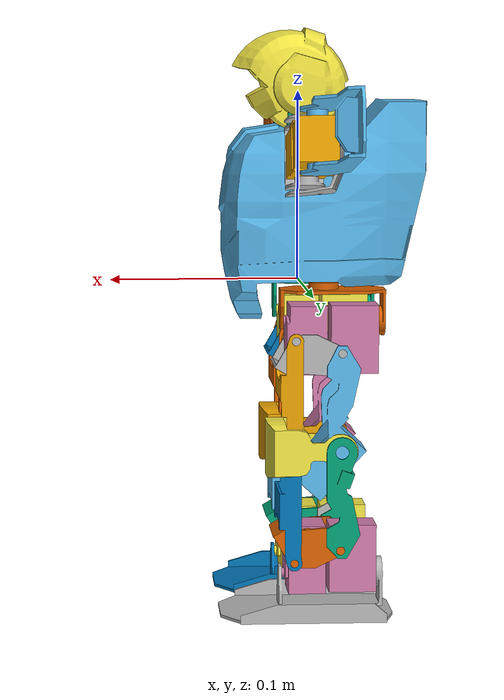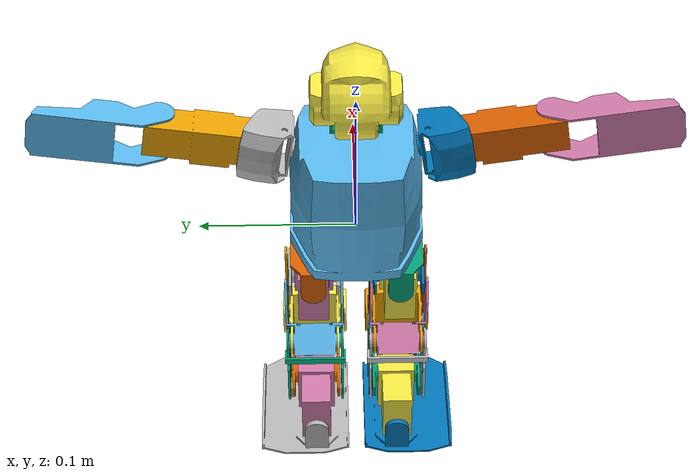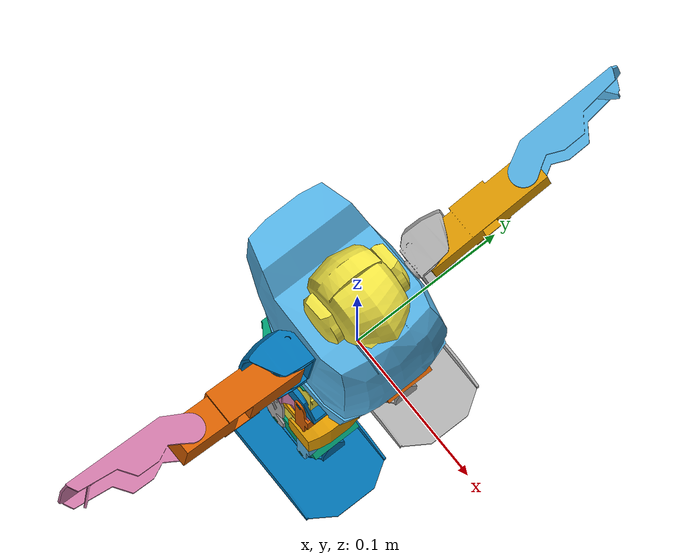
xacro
<?xml version="1.0"?>
<robot name="roboviez" xmlns:xacro="http://www.ros.org/wiki/xacro">

  <xacro:include filename="$(find roboviez_ros_samples)/urdf/common.xacro"/>

  <link name="world"/>

   <!-- Body -->

  <joint name="base_joint" type="floating">
    <parent link="world"/>
    <child  link="base_link"/>
  </joint>
  <link name="base_link">
    <visual>
      <origin rpy="0 0 0" xyz="0 0 0"/>
      <geometry>
          <mesh filename="package://roboviez_ros_samples/meshes/dae/roboviez_body.dae" />
      </geometry>
      <origin xyz="0 0 0" rpy="0 0 0"/>
    </visual>
  </link>

   <!-- Head -->

  <joint name="id14_joint" type="revolute">
    <xacro:axis_joint
      parent_link="base_link" link_name="id14_link" lower="-1.5707" upper="1.5707" velocity="1"
      origin_x="0" origin_y="0" origin_z="0.0825" axis_x="0" axis_y="0" axis_z="-1"  rpy_x="0" rpy_y="0" rpy_z="0">
    </xacro:axis_joint>
  </joint>
  <link name="id14_link">
    <visual>
      <origin rpy="0 0 0" xyz="0 0 0"/>
      <geometry>
          <mesh filename="package://roboviez_ros_samples/meshes/dae/neck_yaw.dae" />
      </geometry>
    </visual>
  </link>

  <joint name="id15_joint" type="revolute">
    <xacro:axis_joint
      parent_link="id14_link" link_name="id15_link" lower="-0.7853" upper="0.3926" velocity="1"
      origin_x="0" origin_y="0" origin_z="0.018" axis_x="0" axis_y="1" axis_z="0"  rpy_x="0" rpy_y="0" rpy_z="0">
    </xacro:axis_joint>
  </joint>
  <link name="id15_link">
    <visual>
      <origin rpy="0 0 0" xyz="0 0 0"/>
      <geometry>
          <mesh filename="package://roboviez_ros_samples/meshes/dae/head.dae" />
      </geometry>
    </visual>
  </link>

   <!-- R Arm -->

  <joint name="id16_joint" type="revolute">
    <xacro:axis_joint
      parent_link="base_link" link_name="id16_link" lower="-1.5707" upper="1.5707" velocity="1"
      origin_x="0" origin_y="-0.039962" origin_z="0.065934" axis_x="0" axis_y="1" axis_z="0" rpy_x="${M_PI/-20}" rpy_y="0" rpy_z="0">
    </xacro:axis_joint>
  </joint>
  <link name="id16_link">
    <visual>
      <origin rpy="0 ${M_PI/-2} 0" xyz="0 0 0"/>
      <geometry>
          <mesh filename="package://roboviez_ros_samples/meshes/dae/shoulder.dae" />
      </geometry>
    </visual>
  </link>

  <joint name="id17_joint" type="revolute">
    <xacro:axis_joint
      parent_link="id16_link" link_name="id17_link" lower="-1.5707" upper="1.5707" velocity="1"
      origin_x="0" origin_y="-0.016" origin_z="0" axis_x="0" axis_y="0" axis_z="1" rpy_x="0" rpy_y="0" rpy_z="0">
    </xacro:axis_joint>
  </joint>
  <link name="id17_link">
    <visual>
      <origin rpy="${M_PI/-2} ${M_PI/-2} 0 " xyz="0 0 0"/>
      <geometry>
          <mesh filename="package://roboviez_ros_samples/meshes/dae/arm.dae" />
      </geometry>
    </visual>
  </link>

  <joint name="id18_joint" type="revolute">
    <xacro:axis_joint
      parent_link="id17_link" link_name="id18_link" lower="-1.5707" upper="1.5707" velocity="1"
      origin_x="0" origin_y="-0.065" origin_z="0" axis_x="0" axis_y="0" axis_z="-1" rpy_x="0" rpy_y="0" rpy_z="0">
    </xacro:axis_joint>
  </joint>
  <link name="id18_link">
    <visual>
      <origin rpy="${M_PI/-2} ${M_PI/-2} 0 " xyz="0 0 0"/>
      <geometry>
          <mesh filename="package://roboviez_ros_samples/meshes/dae/hand.dae" />
      </geometry>
    </visual>
  </link>

   <!-- L Arm -->

  <joint name="id19_joint" type="revolute">
    <xacro:axis_joint
      parent_link="base_link" link_name="id19_link" lower="-1.5707" upper="1.5707" velocity="1"
      origin_x="0" origin_y="0.039962" origin_z="0.065934" axis_x="0" axis_y="-1" axis_z="0" rpy_x="${M_PI/20}" rpy_y="0" rpy_z="0">
    </xacro:axis_joint>
  </joint>
  <link name="id19_link">
    <visual>
      <origin rpy="0 ${M_PI/2} ${M_PI}" xyz="0 0 0"/>
      <geometry>
          <mesh filename="package://roboviez_ros_samples/meshes/dae/shoulder.dae" />
      </geometry>
    </visual>
  </link>

  <joint name="id20_joint" type="revolute">
    <xacro:axis_joint
      parent_link="id19_link" link_name="id20_link" lower="-1.5707" upper="1.5707" velocity="1"
      origin_x="0" origin_y="0.016" origin_z="0" axis_x="0" axis_y="0" axis_z="1" rpy_x="0" rpy_y="0" rpy_z="0">
    </xacro:axis_joint>
  </joint>
  <link name="id20_link">
    <visual>
      <origin rpy="${M_PI/2} ${M_PI/2} 0 " xyz="0 0 0"/>
      <geometry>
          <mesh filename="package://roboviez_ros_samples/meshes/dae/arm.dae" />
      </geometry>
    </visual>
  </link>

  <joint name="id21_joint" type="revolute">
    <xacro:axis_joint
      parent_link="id20_link" link_name="id21_link" lower="-1.5707" upper="1.5707" velocity="1"
      origin_x="0" origin_y="0.065" origin_z="0" axis_x="0" axis_y="0" axis_z="-1" rpy_x="0" rpy_y="0" rpy_z="0">
    </xacro:axis_joint>
  </joint>
  <link name="id21_link">
    <visual>
      <origin rpy="${M_PI/2} ${M_PI/2} 0 " xyz="0 0 0"/>
      <geometry>
          <mesh filename="package://roboviez_ros_samples/meshes/dae/hand.dae" />
      </geometry>
    </visual>
  </link>

  <!-- R Leg -->

  <joint name="id12_joint" type="revolute">
    <xacro:axis_joint
      parent_link="base_link" link_name="id12_link" lower="-1.5707" upper="1.5707" velocity="1"
      origin_x="-0.0115" origin_y="-0.0275" origin_z="-0.0025" axis_x="0" axis_y="0" axis_z="1" rpy_x="0" rpy_y="0" rpy_z="0">
    </xacro:axis_joint>
  </joint>
  <link name="id12_link">
    <visual>
      <origin rpy="0 0 0" xyz="0 0 0"/>
      <geometry>
          <mesh filename="package://roboviez_ros_samples/meshes/dae/leg_yaw.dae" />
      </geometry>
    </visual>
  </link>

  <joint name="id2_joint" type="revolute">
    <xacro:axis_joint
      parent_link="id12_link" link_name="id2_link" lower="-1.5707" upper="1.5707" velocity="1"
      origin_x="-0.026819" origin_y="0" origin_z="-0.017" axis_x="-1" axis_y="0" axis_z="0" rpy_x="0" rpy_y="0" rpy_z="0">
    </xacro:axis_joint>
  </joint>
  <link name="id2_link">
    <visual>
      <origin rpy="0 0 0" xyz="0 0 0"/>
      <geometry>
          <mesh filename="package://roboviez_ros_samples/meshes/dae/leg_roll.dae" />
      </geometry>
    </visual>
  </link>

  <joint name="id3_joint" type="revolute">
    <xacro:axis_joint
      parent_link="id2_link" link_name="id3_link" lower="-1.5707" upper="1.5707" velocity="1"
      origin_x="0.0355" origin_y="0" origin_z="-0.0182" axis_x="0" axis_y="-1" axis_z="0" rpy_x="0" rpy_y="0" rpy_z="0">
    </xacro:axis_joint>
  </joint>
  <link name="id3_link">
    <visual>
      <origin rpy="0 0 0" xyz="0 0 0"/>
      <geometry>
          <mesh filename="package://roboviez_ros_samples/meshes/dae/leg_pitch.dae" />
      </geometry>
    </visual>
  </link>

  <joint name="id4upper_joint" type="revolute">
    <xacro:axis_joint
      parent_link="id3_link" link_name="id4upper_link" lower="-1.5707" upper="1.5707" velocity="1"
      origin_x="0.007" origin_y="0" origin_z="0.0095" axis_x="0" axis_y="-1" axis_z="0" rpy_x="0" rpy_y="0" rpy_z="0">
    </xacro:axis_joint>
    <mimic joint="id4_joint" multiplier="-0.5" offset="${M_PI*0.25}" />

  </joint>
  <link name="id4upper_link">
    <visual>
      <origin rpy="0 0 0" xyz="0 0 0"/>
      <geometry>
          <mesh filename="package://roboviez_ros_samples/meshes/dae/link_fwd.dae" />
      </geometry>
    </visual>
  </link>

  <joint name="id4mot_joint" type="revolute">
    <xacro:axis_joint
      parent_link="id3_link" link_name="id4mot_link" lower="-1.5707" upper="1.5707" velocity="1"
      origin_x="-0.0171402" origin_y="0" origin_z="0.003" axis_x="0" axis_y="-1" axis_z="0" rpy_x="0" rpy_y="0" rpy_z="0">
    </xacro:axis_joint>
    <mimic joint="id4_joint" multiplier="-0.5" offset="${M_PI*0.25}" />

  </joint>
  <link name="id4mot_link">
    <visual>
      <origin rpy="0 0 0" xyz="0 0 0"/>
      <geometry>
          <mesh filename="package://roboviez_ros_samples/meshes/dae/leg_kneemot.dae" />
      </geometry>
    </visual>
  </link>

  <joint name="id4lowback_joint" type="revolute">
    <xacro:axis_joint
      parent_link="id4mot_link" link_name="id4lowback_link" lower="-1.5707" upper="1.5707" velocity="1"
      origin_x="0" origin_y="0" origin_z="-0.0520066" axis_x="0" axis_y="-1" axis_z="0" rpy_x="0" rpy_y="0" rpy_z="0">
    </xacro:axis_joint>
    <mimic joint="id4_joint" multiplier="1" offset="-${M_PI*0.5}" />

  </joint>
  <link name="id4lowback_link">
    <visual>
      <origin rpy="0 0 0" xyz="0 0 0"/>
      <geometry>
          <mesh filename="package://roboviez_ros_samples/meshes/dae/link_lowback.dae" />
      </geometry>
    </visual>
  </link>

  <joint name="id4knee_joint" type="revolute">
    <xacro:axis_joint
      parent_link="id4upper_link" link_name="id4knee_link" lower="-1.5707" upper="1.5707" velocity="1"
      origin_x="0.0007" origin_y="0" origin_z="-0.052" axis_x="0" axis_y="-1" axis_z="0" rpy_x="0" rpy_y="0" rpy_z="0">
    </xacro:axis_joint>
    <mimic joint="id4_joint" multiplier="0.5" offset="${M_PI*-0.25}" />

  </joint>
  <link name="id4knee_link">
    <visual>
      <origin rpy="0 0 0" xyz="0 0 0"/>
      <geometry>
          <mesh filename="package://roboviez_ros_samples/meshes/dae/leg_knee.dae" />
      </geometry>
    </visual>
  </link>

  <joint name="id4lower_joint" type="revolute">
    <xacro:axis_joint
      parent_link="id4knee_link" link_name="id4lower_link" lower="-1.5707" upper="1.5707" velocity="1"
      origin_x="0" origin_y="0" origin_z="-0.013" axis_x="0" axis_y="-1" axis_z="0" rpy_x="0" rpy_y="0" rpy_z="0">
    </xacro:axis_joint>
    <mimic joint="id4_joint" multiplier="0.5" offset="-${M_PI*0.25}" />

  </joint>
  <link name="id4lower_link">
    <visual>
      <origin rpy="0 0 0" xyz="0 0 0"/>
      <geometry>
          <mesh filename="package://roboviez_ros_samples/meshes/dae/link_lower.dae" />
      </geometry>
    </visual>
  </link>

  <joint name="id4bottom_joint" type="revolute">
    <xacro:axis_joint
      parent_link="id4lower_link" link_name="id4bottom_link" lower="-1.5707" upper="1.5707" velocity="1"
      origin_x="0" origin_y="0" origin_z="-0.052" axis_x="0" axis_y="-1" axis_z="0" rpy_x="0" rpy_y="0" rpy_z="0">
    </xacro:axis_joint>
    <mimic joint="id4_joint" multiplier="-0.5" offset="${M_PI*0.25}" />

  </joint>
  <link name="id4bottom_link">
    <visual>
      <origin rpy="0 0 0" xyz="0 0 0"/>
      <geometry>
          <mesh filename="package://roboviez_ros_samples/meshes/dae/leg_pitch_low.dae" />
      </geometry>
    </visual>
  </link>

  <joint name="id5_joint" type="revolute">
    <xacro:axis_joint
      parent_link="id4bottom_link" link_name="id5_link" lower="-1.5707" upper="1.5707" velocity="1"
      origin_x="-0.00699" origin_y="0" origin_z="0.009499" axis_x="0" axis_y="1" axis_z="0" rpy_x="0" rpy_y="0" rpy_z="0">
    </xacro:axis_joint>
  </joint>
  <link name="id5_link">
    <visual>
      <origin rpy="0 0 0" xyz="0 0 0"/>
      <geometry>
          <mesh filename="package://roboviez_ros_samples/meshes/dae/leg_pitch_l.dae" />
      </geometry>
    </visual>
  </link>

  <joint name="id6_joint" type="revolute">
    <xacro:axis_joint
      parent_link="id5_link" link_name="id6_link" lower="-1.5707" upper="1.5707" velocity="1"
      origin_x="-0.0355" origin_y="0" origin_z="-0.0182" axis_x="1" axis_y="0" axis_z="0" rpy_x="0" rpy_y="0" rpy_z="0">
    </xacro:axis_joint>
  </joint>
  <link name="id6_link">
    <visual>
      <origin rpy="0 0 0" xyz="0 0 0"/>
      <geometry>
          <mesh filename="package://roboviez_ros_samples/meshes/dae/footprint_R.dae" />
      </geometry>
    </visual>
  </link>

  <!-- L Leg -->

  <joint name="id13_joint" type="revolute">
    <xacro:axis_joint
      parent_link="base_link" link_name="id13_link" lower="-1.5707" upper="1.5707" velocity="1"
      origin_x="-0.0115" origin_y="0.0275" origin_z="-0.0025" axis_x="0" axis_y="0" axis_z="1" rpy_x="0" rpy_y="0" rpy_z="0">
    </xacro:axis_joint>
  </joint>
  <link name="id13_link">
    <visual>
      <origin rpy="0 0 0" xyz="0 0 0"/>
      <geometry>
          <mesh filename="package://roboviez_ros_samples/meshes/dae/leg_yaw.dae" />
      </geometry>
    </visual>
  </link>

  <joint name="id7_joint" type="revolute">
    <xacro:axis_joint
      parent_link="id13_link" link_name="id7_link" lower="-1.5707" upper="1.5707" velocity="1"
      origin_x="-0.026819" origin_y="0" origin_z="-0.017" axis_x="-1" axis_y="0" axis_z="0" rpy_x="0" rpy_y="0" rpy_z="0">
    </xacro:axis_joint>
  </joint>
  <link name="id7_link">
    <visual>
      <origin rpy="0 0 0" xyz="0 0 0"/>
      <geometry>
          <mesh filename="package://roboviez_ros_samples/meshes/dae/leg_roll.dae" />
      </geometry>
    </visual>
  </link>

  <joint name="id8_joint" type="revolute">
    <xacro:axis_joint
      parent_link="id7_link" link_name="id8_link" lower="-1.5707" upper="1.5707" velocity="1"
      origin_x="0.0355" origin_y="0" origin_z="-0.0182" axis_x="0" axis_y="1" axis_z="0" rpy_x="0" rpy_y="0" rpy_z="0">
    </xacro:axis_joint>
  </joint>
  <link name="id8_link">
    <visual>
      <origin rpy="0 0 0" xyz="0 0 0"/>
      <geometry>
          <mesh filename="package://roboviez_ros_samples/meshes/dae/leg_pitch.dae" />
      </geometry>
    </visual>
  </link>

  <joint name="id9upper_joint" type="revolute">
    <xacro:axis_joint
      parent_link="id8_link" link_name="id9upper_link" lower="-1.5707" upper="1.5707" velocity="1"
      origin_x="0.007" origin_y="0" origin_z="0.0095" axis_x="0" axis_y="1" axis_z="0" rpy_x="0" rpy_y="0" rpy_z="0">
    </xacro:axis_joint>
    <mimic joint="id9_joint" multiplier="-0.5" offset="${M_PI*-0.25}" />

  </joint>
  <link name="id9upper_link">
    <visual>
      <origin rpy="0 0 0" xyz="0 0 0"/>
      <geometry>
          <mesh filename="package://roboviez_ros_samples/meshes/dae/link_fwd.dae" />
      </geometry>
    </visual>
  </link>

  <joint name="id9mot_joint" type="revolute">
    <xacro:axis_joint
      parent_link="id8_link" link_name="id9mot_link" lower="-1.5707" upper="1.5707" velocity="1"
      origin_x="-0.0171402" origin_y="0" origin_z="0.003" axis_x="0" axis_y="1" axis_z="0" rpy_x="0" rpy_y="0" rpy_z="0">
    </xacro:axis_joint>
    <mimic joint="id9_joint" multiplier="-0.5" offset="${M_PI*-0.25}" />

  </joint>
  <link name="id9mot_link">
    <visual>
      <origin rpy="0 0 0" xyz="0 0 0"/>
      <geometry>
          <mesh filename="package://roboviez_ros_samples/meshes/dae/leg_kneemot.dae" />
      </geometry>
    </visual>
  </link>

  <joint name="id9lowback_joint" type="revolute">
    <xacro:axis_joint
      parent_link="id9mot_link" link_name="id9lowback_link" lower="-1.5707" upper="1.5707" velocity="1"
      origin_x="0" origin_y="0" origin_z="-0.0520066" axis_x="0" axis_y="1" axis_z="0" rpy_x="0" rpy_y="0" rpy_z="0">
    </xacro:axis_joint>
    <mimic joint="id9_joint" multiplier="1" offset="${M_PI*0.5}" />

  </joint>
  <link name="id9lowback_link">
    <visual>
      <origin rpy="0 0 0" xyz="0 0 0"/>
      <geometry>
          <mesh filename="package://roboviez_ros_samples/meshes/dae/link_lowback.dae" />
      </geometry>
    </visual>
  </link>

  <joint name="id9knee_joint" type="revolute">
    <xacro:axis_joint
      parent_link="id9upper_link" link_name="id9knee_link" lower="-1.5707" upper="1.5707" velocity="1"
      origin_x="0.0007" origin_y="0" origin_z="-0.052" axis_x="0" axis_y="1" axis_z="0" rpy_x="0" rpy_y="0" rpy_z="0">
    </xacro:axis_joint>
    <mimic joint="id9_joint" multiplier="0.5" offset="${M_PI*0.25}" />

  </joint>
  <link name="id9knee_link">
    <visual>
      <origin rpy="0 0 0" xyz="0 0 0"/>
      <geometry>
          <mesh filename="package://roboviez_ros_samples/meshes/dae/leg_knee.dae" />
      </geometry>
    </visual>
  </link>

  <joint name="id9lower_joint" type="revolute">
    <xacro:axis_joint
      parent_link="id9knee_link" link_name="id9lower_link" lower="-1.5707" upper="1.5707" velocity="1"
      origin_x="0" origin_y="0" origin_z="-0.013" axis_x="0" axis_y="1" axis_z="0" rpy_x="0" rpy_y="0" rpy_z="0">
    </xacro:axis_joint>
    <mimic joint="id9_joint" multiplier="0.5" offset="${M_PI*0.25}" />

  </joint>
  <link name="id9lower_link">
    <visual>
      <origin rpy="0 0 0" xyz="0 0 0"/>
      <geometry>
          <mesh filename="package://roboviez_ros_samples/meshes/dae/link_lower.dae" />
      </geometry>
    </visual>
  </link>

  <joint name="id9bottom_joint" type="revolute">
    <xacro:axis_joint
      parent_link="id9lower_link" link_name="id9bottom_link" lower="-1.5707" upper="1.5707" velocity="1"
      origin_x="0" origin_y="0" origin_z="-0.052" axis_x="0" axis_y="1" axis_z="0" rpy_x="0" rpy_y="0" rpy_z="0">
    </xacro:axis_joint>
    <mimic joint="id9_joint" multiplier="-0.5" offset="${M_PI*-0.25}" />

  </joint>
  <link name="id9bottom_link">
    <visual>
      <origin rpy="0 0 0" xyz="0 0 0"/>
      <geometry>
          <mesh filename="package://roboviez_ros_samples/meshes/dae/leg_pitch_low.dae" />
      </geometry>
    </visual>
  </link>

  <joint name="id10_joint" type="revolute">
    <xacro:axis_joint
      parent_link="id9bottom_link" link_name="id10_link" lower="-1.5707" upper="1.5707" velocity="1"
      origin_x="-0.00699" origin_y="0" origin_z="0.009499" axis_x="0" axis_y="-1" axis_z="0" rpy_x="0" rpy_y="0" rpy_z="0">
    </xacro:axis_joint>
  </joint>
  <link name="id10_link">
    <visual>
      <origin rpy="0 0 0" xyz="0 0 0"/>
      <geometry>
          <mesh filename="package://roboviez_ros_samples/meshes/dae/leg_pitch_l.dae" />
      </geometry>
    </visual>
  </link>

  <joint name="id11_joint" type="revolute">
    <xacro:axis_joint
      parent_link="id10_link" link_name="id11_link" lower="-1.5707" upper="1.5707" velocity="1"
      origin_x="-0.0355" origin_y="0" origin_z="-0.0182" axis_x="1" axis_y="0" axis_z="0" rpy_x="0" rpy_y="0" rpy_z="0">
    </xacro:axis_joint>
  </joint>
  <link name="id11_link">
    <visual>
      <origin rpy="0 0 0" xyz="0 0 0"/>
      <geometry>
          <mesh filename="package://roboviez_ros_samples/meshes/dae/footprint_L.dae" />
      </geometry>
    </visual>
  </link>

</robot>

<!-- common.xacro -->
<robot xmlns:xacro="http://ros.org/wiki/xacro">
  <property name="M_PI" value="3.14159274"/>

  <xacro:macro name="cylinder_inertial" params="mass radius length">
	<mass value="${mass}"/>
	<inertia ixx="${((radius*radius)/4 + (length*length)/12)*mass}" ixy="0" ixz="0"
			 iyy="${((radius*radius)/4 + (length*length)/12)*mass}" iyz="0"
			 izz="${(mass*radius*radius)/2}" />
  </xacro:macro>

  <xacro:macro name="box_inertial" params="mass height width depth">
	<mass value="${mass}"/>
	<inertia ixx="${(mass*(width*width+depth*depth))/12}" ixy="0" ixz="0"
			 iyy="${(mass*(height*height+depth*depth))/12}" iyz="0"
			 izz="${(mass*(height*height+width*width))/12}" />
  </xacro:macro>

  <xacro:macro name="boxlink" params="link_name mass x y z height width depth">
    <link name="${link_name}">
      <visual>
        <geometry>
          <box size="${depth} ${width} ${height}" />
        </geometry>
        <origin xyz="${x} ${y} ${z}" rpy="0 0 0"/>
      </visual>
      <collision>
        <geometry>
          <box size="${depth} ${width} ${height}" />
        </geometry>
        <origin xyz="${x} ${y} ${z}" rpy="0 0 0"/>
      </collision>
      <inertial>
        <mass value="${mass}"/>
        <origin xyz="${x} ${y} ${z}" rpy="0 0 0"/>
	<inertia ixx="${(mass*(width*width+depth*depth))/12}" ixy="0" ixz="0"
			 iyy="${(mass*(height*height+depth*depth))/12}" iyz="0"
			 izz="${(mass*(height*height+width*width))/12}" />
      </inertial>
    </link>
  </xacro:macro>

  <xacro:macro name="axis_link" params="link_name model_fname mass x y z height width depth">
    <link name="${link_name}">
      <visual>
        <geometry>
          <mesh filename="package://roboviez_ros_samples/meshes/dae/${model_fname}.dae" />
        </geometry>
        <origin xyz="${x} ${y} ${z}" rpy="0 0 0"/>
      </visual>
      <collision>
        <geometry>
          <mesh filename="package://roboviez_ros_samples/meshes/stl/${model_fname}.stl" />
        </geometry>
        <origin xyz="${x} ${y} ${z}" rpy="0 0 0"/>
      </collision>
      <inertial>
        <mass value="${mass}"/>
        <origin xyz="${x} ${y} ${z}" rpy="0 0 0"/>
	<inertia ixx="${(mass*(width*width+depth*depth))/12}" ixy="0" ixz="0"
			 iyy="${(mass*(height*height+depth*depth))/12}" iyz="0"
			 izz="${(mass*(height*height+width*width))/12}" />
      </inertial>
    </link>
  </xacro:macro>

  <xacro:macro name="axis_joint"
      params="parent_link link_name lower upper velocity origin_x origin_y origin_z axis_x axis_y axis_z rpy_x rpy_y rpy_z">
      <origin xyz="${origin_x} ${origin_y} ${origin_z}" rpy="${rpy_x} ${rpy_y} ${rpy_z}"/>
      <axis xyz="${axis_x} ${axis_y} ${axis_z}"/>
      <parent link="${parent_link}"/>
      <child link="${link_name}"/>
      <dynamics damping="0.1" />
      <limit effort="5" lower="${lower}" upper="${upper}" velocity="${velocity}" />
  </xacro:macro>

</robot>
